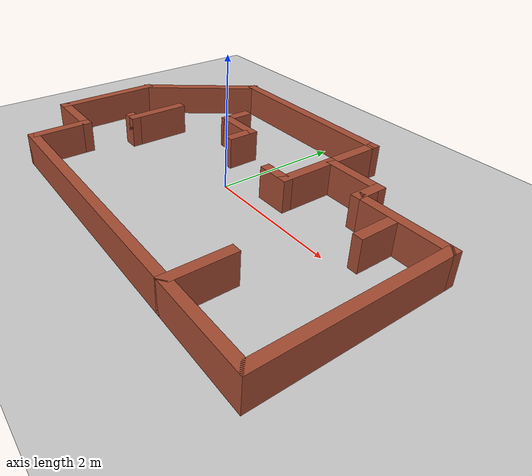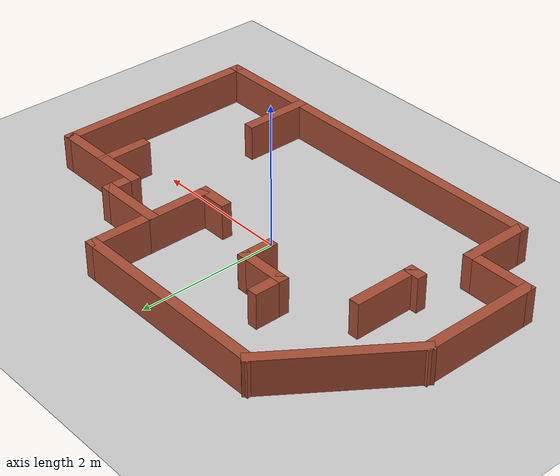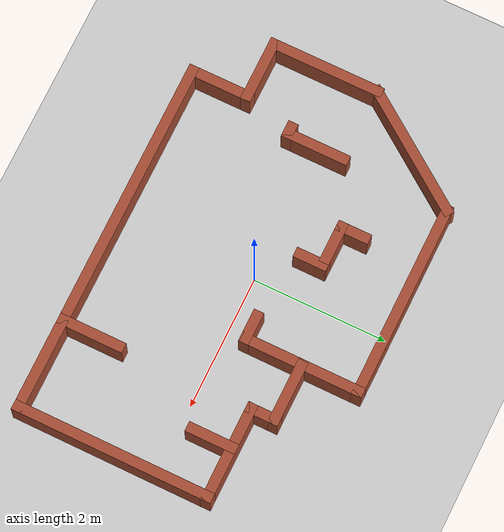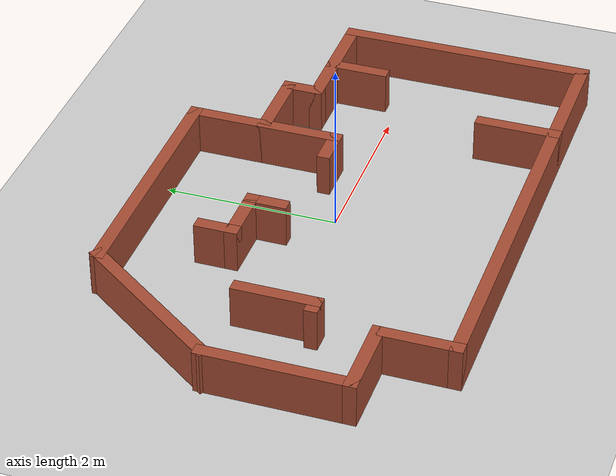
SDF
<sdf version="1.7">
 <world name="default">
  <light name="sun" type="directional">
   <pose>0 0 10 0 -0 0</pose>
   <diffuse>0.8 0.8 0.8 1</diffuse>
   <specular>0.2 0.2 0.2 1</specular>
   <attenuation>
    <range>1000</range>
    <constant>0.9</constant>
    <linear>0.01</linear>
    <quadratic>0.001</quadratic>
   </attenuation>
   <direction>-0.5 0.1 -0.9</direction>
   <spot><inner_angle>0</inner_angle><outer_angle>0</outer_angle><falloff>0</falloff></spot>
  </light>
  <model name="ground_plane">
   <static>1</static>
   <link name="link">
    <collision name="collision">
     <geometry><plane><normal>0 0 1</normal><size>100 100</size></plane></geometry>
     <surface><friction><ode><mu>100</mu><mu2>50</mu2></ode></friction></surface>
    </collision>
    <visual name="visual">
     <cast_shadows>0</cast_shadows>
     <geometry><plane><normal>0 0 1</normal><size>100 100</size></plane></geometry>
     <material>
      <script><uri>file://media/materials/scripts/gazebo.material</uri><name>Gazebo/Grey</name></script>
     </material>
    </visual>
   </link>
  </model>
  <gravity>0 0 -9.8</gravity>
  <magnetic_field>6e-06 2.3e-05 -4.2e-05</magnetic_field>
  <atmosphere type="adiabatic"/>
  <physics type="ode">
   <max_step_size>0.001</max_step_size>
   <real_time_factor>1</real_time_factor>
   <real_time_update_rate>0.0</real_time_update_rate>
   <max_step_size>0.003</max_step_size>
   <ode>
    <solver>
     <type>quick</type>
     <iters>150</iters>
     <precon_iters>0</precon_iters>
     <sor>1.400000</sor>
     <use_dynamic_moi_rescaling>1</use_dynamic_moi_rescaling>
    </solver>
    <constraints>
     <cfm>0.00001</cfm>
     <erp>0.2</erp>
     <contact_max_correcting_vel>2000.000000</contact_max_correcting_vel>
     <contact_surface_layer>0.01000</contact_surface_layer>
    </constraints>
   </ode>
  </physics>
  <scene><ambient>0.4 0.4 0.4 1</ambient><background>0.7 0.7 0.7 1</background><shadows>1</shadows></scene>
  <spherical_coordinates>
   <surface_model>EARTH_WGS84</surface_model>
   <latitude_deg>0</latitude_deg>
   <longitude_deg>0</longitude_deg>
   <elevation>0</elevation>
   <heading_deg>0</heading_deg>
  </spherical_coordinates>
  <model name="RAL2310_1">
   <link name="Wall_10">
    <collision name="Wall_10_Collision">
     <geometry><box><size>0.5 0.15 0.5</size></box></geometry>
     <pose>0 0 0.25 0 -0 0</pose>
    </collision>
    <visual name="Wall_10_Visual">
     <pose>0 0 0.25 0 -0 0</pose>
     <geometry><box><size>0.5 0.15 0.5</size></box></geometry>
     <material>
      <script><uri>file://media/materials/scripts/gazebo.material</uri><name>Gazebo/Bricks</name></script>
      <ambient>1 1 1 1</ambient>
     </material>
     <meta><layer>0</layer></meta>
    </visual>
    <pose>1.76484 0.985163 0 0 -0 1.5708</pose>
   </link>
   <link name="Wall_11">
    <collision name="Wall_11_Collision">
     <geometry><box><size>1 0.15 0.5</size></box></geometry>
     <pose>0 0 0.25 0 -0 0</pose>
    </collision>
    <visual name="Wall_11_Visual">
     <pose>0 0 0.25 0 -0 0</pose>
     <geometry><box><size>1 0.15 0.5</size></box></geometry>
     <material>
      <script><uri>file://media/materials/scripts/gazebo.material</uri><name>Gazebo/Bricks</name></script>
      <ambient>1 1 1 1</ambient>
     </material>
     <meta><layer>0</layer></meta>
    </visual>
    <pose>1.33984 1.16016 0 0 -0 3.14159</pose>
   </link>
   <link name="Wall_12">
    <collision name="Wall_12_Collision">
     <geometry><box><size>1 0.15 0.5</size></box></geometry>
     <pose>0 0 0.25 0 -0 0</pose>
    </collision>
    <visual name="Wall_12_Visual">
     <pose>0 0 0.25 0 -0 0</pose>
     <geometry><box><size>1 0.15 0.5</size></box></geometry>
     <material>
      <script><uri>file://media/materials/scripts/gazebo.material</uri><name>Gazebo/Bricks</name></script>
      <ambient>1 1 1 1</ambient>
     </material>
     <meta><layer>0</layer></meta>
    </visual>
    <pose>0.914837 1.58516 0 0 -0 1.5708</pose>
   </link>
   <link name="Wall_13">
    <collision name="Wall_13_Collision">
     <geometry><box><size>3 0.15 0.5</size></box></geometry>
     <pose>0 0 0.25 0 -0 0</pose>
    </collision>
    <visual name="Wall_13_Visual">
     <pose>0 0 0.25 0 -0 0</pose>
     <geometry><box><size>3 0.15 0.5</size></box></geometry>
     <material>
      <script><uri>file://media/materials/scripts/gazebo.material</uri><name>Gazebo/Bricks</name></script>
      <ambient>1 1 1 1</ambient>
     </material>
     <meta><layer>0</layer></meta>
    </visual>
    <pose>-0.510163 2.01016 0 0 -0 3.14159</pose>
   </link>
   <link name="Wall_15">
    <collision name="Wall_15_Collision">
     <geometry><box><size>2.12041 0.15 0.5</size></box></geometry>
     <pose>0 0 0.25 0 -0 0</pose>
    </collision>
    <visual name="Wall_15_Visual">
     <pose>0 0 0.25 0 -0 0</pose>
     <geometry><box><size>2.12041 0.15 0.5</size></box></geometry>
     <material>
      <script><uri>file://media/materials/scripts/gazebo.material</uri><name>Gazebo/Bricks</name></script>
      <ambient>1 1 1 1</ambient>
     </material>
     <meta><layer>0</layer></meta>
    </visual>
    <pose>-2.51016 1.21016 0 0 -0 -2.194</pose>
   </link>
   <link name="Wall_18">
    <collision name="Wall_18_Collision">
     <geometry><box><size>1 0.15 0.5</size></box></geometry>
     <pose>0 0 0.25 0 -0 0</pose>
    </collision>
    <visual name="Wall_18_Visual">
     <pose>0 0 0.25 0 -0 0</pose>
     <geometry><box><size>1 0.15 0.5</size></box></geometry>
     <material>
      <script><uri>file://media/materials/scripts/gazebo.material</uri><name>Gazebo/Bricks</name></script>
      <ambient>1 1 1 1</ambient>
     </material>
     <meta><layer>0</layer></meta>
    </visual>
    <pose>-1.98516 -0.014837 0 0 -0 -1.5708</pose>
   </link>
   <link name="Wall_19">
    <collision name="Wall_19_Collision">
     <geometry><box><size>0.25 0.15 0.5</size></box></geometry>
     <pose>0 0 0.25 0 -0 0</pose>
    </collision>
    <visual name="Wall_19_Visual">
     <pose>0 0 0.25 0 -0 0</pose>
     <geometry><box><size>0.25 0.15 0.5</size></box></geometry>
     <material>
      <script><uri>file://media/materials/scripts/gazebo.material</uri><name>Gazebo/Bricks</name></script>
      <ambient>1 1 1 1</ambient>
     </material>
     <meta><layer>0</layer></meta>
    </visual>
    <pose>-2.03516 -0.439837 0 0 -0 3.14159</pose>
   </link>
   <link name="Wall_2">
    <collision name="Wall_2_Collision">
     <geometry><box><size>1 0.15 0.5</size></box></geometry>
     <pose>0 0 0.25 0 -0 0</pose>
    </collision>
    <visual name="Wall_2_Visual">
     <pose>0 0 0.25 0 -0 0</pose>
     <geometry><box><size>1 0.15 0.5</size></box></geometry>
     <material>
      <script><uri>file://media/materials/scripts/gazebo.material</uri><name>Gazebo/Bricks</name></script>
      <ambient>1 1 1 1</ambient>
     </material>
     <meta><layer>0</layer></meta>
    </visual>
    <pose>-2.23516 -1.61484 0 0 -0 1.5708</pose>
   </link>
   <link name="Wall_29">
    <collision name="Wall_29_Collision">
     <geometry><box><size>1 0.15 0.5</size></box></geometry>
     <pose>0 0 0.25 0 -0 0</pose>
    </collision>
    <visual name="Wall_29_Visual">
     <pose>0 0 0.25 0 -0 0</pose>
     <geometry><box><size>1 0.15 0.5</size></box></geometry>
     <material>
      <script><uri>file://media/materials/scripts/gazebo.material</uri><name>Gazebo/Bricks</name></script>
      <ambient>1 1 1 1</ambient>
     </material>
     <meta><layer>0</layer></meta>
    </visual>
    <pose>1.76484 -1.61484 0 0 -0 1.5708</pose>
   </link>
   <link name="Wall_3">
    <collision name="Wall_3_Collision">
     <geometry><box><size>1 0.15 0.5</size></box></geometry>
     <pose>0 0 0.25 0 -0 0</pose>
    </collision>
    <visual name="Wall_3_Visual">
     <pose>0 0 0.25 0 -0 0</pose>
     <geometry><box><size>1 0.15 0.5</size></box></geometry>
     <material>
      <script><uri>file://media/materials/scripts/gazebo.material</uri><name>Gazebo/Bricks</name></script>
      <ambient>1 1 1 1</ambient>
     </material>
     <meta><layer>0</layer></meta>
    </visual>
    <pose>-2.66016 -1.18984 0 0 -0 3.14159</pose>
   </link>
   <link name="Wall_31">
    <collision name="Wall_31_Collision">
     <geometry><box><size>1 0.15 0.5</size></box></geometry>
     <pose>0 0 0.25 0 -0 0</pose>
    </collision>
    <visual name="Wall_31_Visual">
     <pose>0 0 0.25 0 -0 0</pose>
     <geometry><box><size>1 0.15 0.5</size></box></geometry>
     <material>
      <script><uri>file://media/materials/scripts/gazebo.material</uri><name>Gazebo/Bricks</name></script>
      <ambient>1 1 1 1</ambient>
     </material>
     <meta><layer>0</layer></meta>
    </visual>
    <pose>0.914837 0.735163 0 0 -0 -1.5708</pose>
   </link>
   <link name="Wall_32">
    <collision name="Wall_32_Collision">
     <geometry><box><size>0.5 0.15 0.5</size></box></geometry>
     <pose>0 0 0.25 0 -0 0</pose>
    </collision>
    <visual name="Wall_32_Visual">
     <pose>0 0 0.25 0 -0 0</pose>
     <geometry><box><size>0.5 0.15 0.5</size></box></geometry>
     <material>
      <script><uri>file://media/materials/scripts/gazebo.material</uri><name>Gazebo/Bricks</name></script>
      <ambient>1 1 1 1</ambient>
     </material>
     <meta><layer>0</layer></meta>
    </visual>
    <pose>0.739837 0.310163 0 0 -0 3.14159</pose>
   </link>
   <link name="Wall_4">
    <collision name="Wall_4_Collision">
     <geometry><box><size>1.75 0.15 0.5</size></box></geometry>
     <pose>0 0 0.25 0 -0 0</pose>
    </collision>
    <visual name="Wall_4_Visual">
     <pose>0 0 0.25 0 -0 0</pose>
     <geometry><box><size>1.75 0.15 0.5</size></box></geometry>
     <material>
      <script><uri>file://media/materials/scripts/gazebo.material</uri><name>Gazebo/Bricks</name></script>
      <ambient>1 1 1 1</ambient>
     </material>
     <meta><layer>0</layer></meta>
    </visual>
    <pose>-3.08516 -0.389837 0 0 -0 1.5708</pose>
   </link>
   <link name="Wall_40">
    <collision name="Wall_40_Collision">
     <geometry><box><size>0.75 0.15 0.5</size></box></geometry>
     <pose>0 0 0.25 0 -0 0</pose>
    </collision>
    <visual name="Wall_40_Visual">
     <pose>0 0 0.25 0 -0 0</pose>
     <geometry><box><size>0.75 0.15 0.5</size></box></geometry>
     <material>
      <script><uri>file://media/materials/scripts/gazebo.material</uri><name>Gazebo/Bricks</name></script>
      <ambient>1 1 1 1</ambient>
     </material>
     <meta><layer>0</layer></meta>
    </visual>
    <pose>2.36484 0.510163 0 0 -0 -1.5708</pose>
   </link>
   <link name="Wall_48">
    <collision name="Wall_48_Collision">
     <geometry><box><size>0.5 0.15 0.5</size></box></geometry>
     <pose>0 0 0.25 0 -0 0</pose>
    </collision>
    <visual name="Wall_48_Visual">
     <pose>0 0 0.25 0 -0 0</pose>
     <geometry><box><size>0.5 0.15 0.5</size></box></geometry>
     <material>
      <script><uri>file://media/materials/scripts/gazebo.material</uri><name>Gazebo/Bricks</name></script>
      <ambient>1 1 1 1</ambient>
     </material>
     <meta><layer>0</layer></meta>
    </visual>
    <pose>-1.08516 0.985163 0 0 -0 -1.5708</pose>
   </link>
   <link name="Wall_49">
    <collision name="Wall_49_Collision">
     <geometry><box><size>0.75 0.15 0.5</size></box></geometry>
     <pose>0 0 0.25 0 -0 0</pose>
    </collision>
    <visual name="Wall_49_Visual">
     <pose>0 0 0.25 0 -0 0</pose>
     <geometry><box><size>0.75 0.15 0.5</size></box></geometry>
     <material>
      <script><uri>file://media/materials/scripts/gazebo.material</uri><name>Gazebo/Bricks</name></script>
      <ambient>1 1 1 1</ambient>
     </material>
     <meta><layer>0</layer></meta>
    </visual>
    <pose>-0.785163 0.810163 0 0 -0 0</pose>
   </link>
   <link name="Wall_50">
    <collision name="Wall_50_Collision">
     <geometry><box><size>0.5 0.15 0.5</size></box></geometry>
     <pose>0 0 0.25 0 -0 0</pose>
    </collision>
    <visual name="Wall_50_Visual">
     <pose>0 0 0.25 0 -0 0</pose>
     <geometry><box><size>0.5 0.15 0.5</size></box></geometry>
     <material>
      <script><uri>file://media/materials/scripts/gazebo.material</uri><name>Gazebo/Bricks</name></script>
      <ambient>1 1 1 1</ambient>
     </material>
     <meta><layer>0</layer></meta>
    </visual>
    <pose>-0.485163 0.635163 0 0 -0 -1.5708</pose>
   </link>
   <link name="Wall_6">
    <collision name="Wall_6_Collision">
     <geometry><box><size>5.5 0.15 0.5</size></box></geometry>
     <pose>0 0 0.25 0 -0 0</pose>
    </collision>
    <visual name="Wall_6_Visual">
     <pose>0 0 0.25 0 -0 0</pose>
     <geometry><box><size>5.5 0.15 0.5</size></box></geometry>
     <material>
      <script><uri>file://media/materials/scripts/gazebo.material</uri><name>Gazebo/Bricks</name></script>
      <ambient>1 1 1 1</ambient>
     </material>
     <meta><layer>0</layer></meta>
    </visual>
    <pose>0.439837 -2.03984 0 0 -0 0</pose>
   </link>
   <link name="Wall_8">
    <collision name="Wall_8_Collision">
     <geometry><box><size>3 0.15 0.5</size></box></geometry>
     <pose>0 0 0.25 0 -0 0</pose>
    </collision>
    <visual name="Wall_8_Visual">
     <pose>0 0 0.25 0 -0 0</pose>
     <geometry><box><size>3 0.15 0.5</size></box></geometry>
     <material>
      <script><uri>file://media/materials/scripts/gazebo.material</uri><name>Gazebo/Bricks</name></script>
      <ambient>1 1 1 1</ambient>
     </material>
     <meta><layer>0</layer></meta>
    </visual>
    <pose>3.11484 -0.614837 0 0 -0 1.5708</pose>
   </link>
   <link name="Wall_9">
    <collision name="Wall_9_Collision">
     <geometry><box><size>1.5 0.15 0.5</size></box></geometry>
     <pose>0 0 0.25 0 -0 0</pose>
    </collision>
    <visual name="Wall_9_Visual">
     <pose>0 0 0.25 0 -0 0</pose>
     <geometry><box><size>1.5 0.15 0.5</size></box></geometry>
     <material>
      <script><uri>file://media/materials/scripts/gazebo.material</uri><name>Gazebo/Bricks</name></script>
      <ambient>1 1 1 1</ambient>
     </material>
     <meta><layer>0</layer></meta>
    </visual>
    <pose>2.43984 0.810163 0 0 -0 3.14159</pose>
   </link>
   <static>1</static>
  </model>
 </world>
</sdf>
